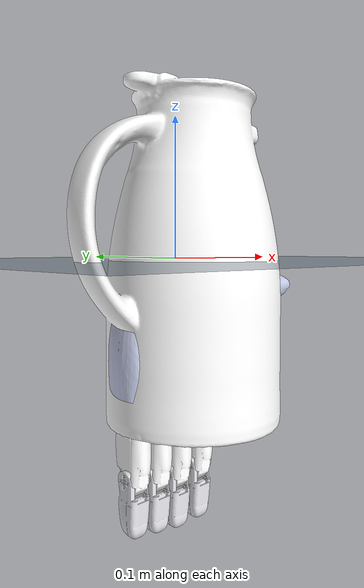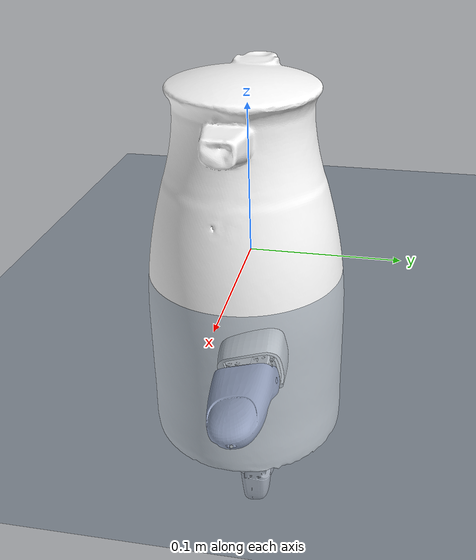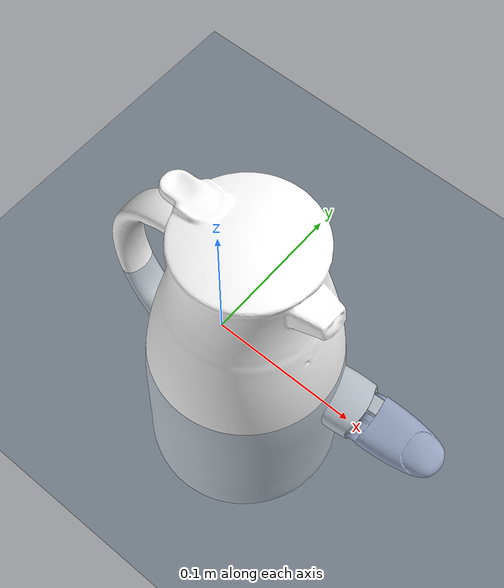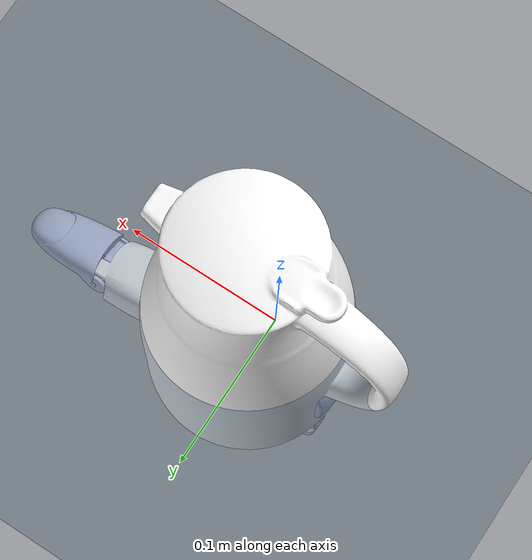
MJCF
<mujoco model="xhand_right">
  <compiler angle="radian" meshdir="../../../assets/"/>

  <default>
    <joint armature="1"/>
    <geom contype="0" conaffinity="0" condim="1" density="800"/>
    <site group="3" rgba="1 0 0 1"/>
    <general biastype="affine" gainprm="300" biasprm="0 -300 1"/>
  </default>

  <asset>
    <texture type="skybox" colorspace="auto" builtin="gradient" rgb1="1 1 1" rgb2="1 1 1" width="512" height="3072"/>
    <texture type="2d" colorspace="auto" name="right_groundplane" builtin="checker" mark="edge" rgb1="0.2 0.3 0.4" rgb2="0.1 0.2 0.3" markrgb="0.8 0.8 0.8" width="300" height="300"/>
    <texture type="cube" colorspace="auto" name="skybox" builtin="gradient" rgb1="0.3 0.5 0.7" rgb2="0 0 0" width="512" height="3072"/>
    <texture type="cube" colorspace="auto" name="groundplane" builtin="checker" mark="edge" rgb1="0.2 0.3 0.4" rgb2="0.1 0.2 0.3" markrgb="0.8 0.8 0.8" width="300" height="1800"/>
    <material name="right_groundplane" texture="right_groundplane" texuniform="true" texrepeat="5 5" reflectance="0.2"/>
    <material name="groundplane" texuniform="true" texrepeat="5 5" reflectance="0.2"/>
    <mesh name="right_hand_link" content_type="model/stl" file="robots/xhand/assets/right_hand_link.STL"/>
    <mesh name="right_hand_thumb_bend_link" content_type="model/stl" file="robots/xhand/assets/right_hand_thumb_bend_link.STL"/>
    <mesh name="right_hand_thumb_rota_link1" content_type="model/stl" file="robots/xhand/assets/right_hand_thumb_rota_link1.STL"/>
    <mesh name="right_hand_thumb_rota_link2" content_type="model/stl" file="robots/xhand/assets/right_hand_thumb_rota_link2.STL"/>
    <mesh name="right_hand_index_bend_link" content_type="model/stl" file="robots/xhand/assets/right_hand_index_bend_link.STL"/>
    <mesh name="right_hand_index_rota_link1" content_type="model/stl" file="robots/xhand/assets/right_hand_index_rota_link1.STL"/>
    <mesh name="right_hand_index_rota_link2" content_type="model/stl" file="robots/xhand/assets/right_hand_index_rota_link2.STL"/>
    <mesh name="right_hand_mid_link1" content_type="model/stl" file="robots/xhand/assets/right_hand_mid_link1.STL"/>
    <mesh name="right_hand_mid_link2" content_type="model/stl" file="robots/xhand/assets/right_hand_mid_link2.STL"/>
    <mesh name="right_hand_ring_link1" content_type="model/stl" file="robots/xhand/assets/right_hand_ring_link1.STL"/>
    <mesh name="right_hand_ring_link2" content_type="model/stl" file="robots/xhand/assets/right_hand_ring_link2.STL"/>
    <mesh name="right_hand_pinky_link1" content_type="model/stl" file="robots/xhand/assets/right_hand_pinky_link1.STL"/>
    <mesh name="right_hand_pinky_link2" content_type="model/stl" file="robots/xhand/assets/right_hand_pinky_link2.STL"/>
    <mesh name="right_visual" file="objects/029/visual.obj"/>
    <mesh name="right_0" file="objects/029/convex/0.obj"/>
    <mesh name="right_1" file="objects/029/convex/1.obj"/>
    <mesh name="right_2" file="objects/029/convex/2.obj"/>
    <mesh name="right_3" file="objects/029/convex/3.obj"/>
    <mesh name="right_4" file="objects/029/convex/4.obj"/>
    <mesh name="right_5" file="objects/029/convex/5.obj"/>
    <mesh name="right_6" file="objects/029/convex/6.obj"/>
    <mesh name="right_7" file="objects/029/convex/7.obj"/>
    <mesh name="right_8" file="objects/029/convex/8.obj"/>
    <mesh name="right_9" file="objects/029/convex/9.obj"/>
  </asset>

  <worldbody>
    <geom name="floor" size="0 0 0.05" pos="0 0 -0.001" type="plane" material="right_groundplane"/>
    <camera name="front" pos="0.031 0.941 0.844" quat="0.0150738 0.00673439 0.407848 0.912901" mode="trackcom"/>
    <body name="R_forearm_ty_link">
      <inertial pos="0 0 0" mass="0.1" diaginertia="0.01 0.01 0.01"/>
      <joint name="R_forearm_tx_link_joint" pos="0 0 0" axis="1 0 0" type="slide" range="-5 5"/>
      <camera name="right_track" pos="-0.868 -0.348 -0.175" quat="0.493349 0.487956 0.506363 0.51196"/>
      <body name="R_forearm_tz_link">
        <inertial pos="0 0 0" mass="0.1" diaginertia="0.01 0.01 0.01"/>
        <joint name="R_forearm_ty_link_joint" pos="0 0 0" axis="0 1 0" type="slide" range="-5 5"/>
        <body name="R_forearm_roll_link">
          <inertial pos="0 0 0" mass="0.1" diaginertia="0.01 0.01 0.01"/>
          <joint name="R_forearm_tz_link_joint" pos="0 0 0" axis="0 0 1" type="slide" range="-5 5"/>
          <body name="R_forearm_pitch_link">
            <inertial pos="0 0 0" mass="0.1" diaginertia="0.01 0.01 0.01"/>
            <joint name="R_forearm_roll_link_joint" pos="0 0 0" axis="0 0 1" range="-6.2 6.2"/>
            <body name="R_forearm_yaw_link">
              <inertial pos="0 0 0" mass="0.1" diaginertia="0.01 0.01 0.01"/>
              <joint name="R_forearm_pitch_link_joint" pos="0 0 0" axis="1 0 0" range="-6.2 6.2"/>
              <body name="right_hand_link">
                <inertial pos="-0.0071397 0.00342244 -0.0584807" quat="0.688453 0.098553 0.0886255 0.713068" mass="0.530025" diaginertia="0.00067782 0.000491189 0.000335821"/>
                <joint name="R_forearm_yaw_link_joint" pos="0 0 0" axis="0 -1 0" range="-6.2 6.2"/>
                <geom name="right_hand_link_visual" type="mesh" group="1" density="0" rgba="0.792157 0.819608 0.933333 1" mesh="right_hand_link"/>
                <geom name="collision_hand_right_palm_0" size="0.04 0.024 0.04" pos="0 0 -0.06" type="box" group="3" rgba="0 1 0 1"/>
                <site name="right_palm" pos="0 0 0" quat="0 0.707107 0.707107 0" size="0.01 0.02 0.03" type="box"/>
                <body name="right_hand_thumb_bend_link" pos="0.0228 0.0095 -0.0305">
                  <inertial pos="0.0145291 -0.000901303 -0.000127926" quat="0.0288921 0.68936 0.0166971 0.72365" mass="0.00985529" diaginertia="1.30647e-06 1.29142e-06 5.40953e-07"/>
                  <joint name="right_hand_thumb_bend_joint" pos="0 0 0" axis="0 0 1" range="0 1.83"/>
                  <geom name="right_thumb_bend_visual" type="mesh" group="1" density="0" rgba="0.890196 0.890196 0.913725 1" mesh="right_hand_thumb_bend_link"/>
                  <geom name="collision_hand_right_thumb_2" size="0.015 0.01" pos="0.01 0 0" quat="0.707107 0 -0.707107 0" type="capsule" group="3" rgba="0 1 0 1"/>
                  <body name="right_hand_thumb_rota_link1" pos="0.028599 0.0083177 0.00178" quat="0.99124 0.130499 0.00265603 0.0201745">
                    <inertial pos="0.0279237 -0.000127603 -0.000272577" quat="-0.0989965 0.703671 0.0850598 0.698435" mass="0.153265" diaginertia="5.62327e-05 4.89801e-05 2.23924e-05"/>
                    <joint name="right_hand_thumb_rota_joint1" pos="0 0 0" axis="0 1 0" range="-1.05 1.57"/>
                    <geom name="right_thumb_rota1_visual" type="mesh" group="1" density="0" rgba="1 1 1 1" mesh="right_hand_thumb_rota_link1"/>
                    <geom name="collision_hand_right_thumb_1" size="0.02 0.0275" pos="0.0275 0 0" quat="0.707107 0 -0.707107 0" type="capsule" group="3" rgba="0 1 0 1"/>
                    <body name="right_hand_thumb_rota_link2" pos="0.0553 0 0">
                      <inertial pos="0.0224697 -0.000691342 0.00302232" quat="-0.0604029 0.715612 0.0198067 0.695599" mass="0.0374004" diaginertia="9.5465e-06 8.27017e-06 3.92137e-06"/>
                      <joint name="right_hand_thumb_rota_joint2" pos="0 0 0" axis="0 1 0" range="-0.175 1.83"/>
                      <geom name="right_thumb_rota2_visual" type="mesh" group="1" density="0" rgba="0.792157 0.819608 0.933333 1" mesh="right_hand_thumb_rota_link2"/>
                      <geom name="collision_hand_right_thumb_0" size="0.015 0.02" pos="0.02 0 0" quat="0.707107 0 -0.707107 0" type="capsule" group="3" rgba="0 1 0 1"/>
                      <geom size="0.001" pos="0.0504025 0 0" group="1" density="0" rgba="0.698039 0.698039 0.698039 1"/>
                      <site name="right_thumb_tip" pos="0.04 0 -0.012"/>
                      <site name="track_hand_right_thumb_tip" pos="0.04 0 -0.012"/>
                      <site name="trace_hand_right_thumb_tip" pos="0.04 0 -0.012"/>
                    </body>
                  </body>
                </body>
                <body name="right_hand_index_bend_link" pos="0.0265 0.0065 -0.0899">
                  <inertial pos="8.08449e-05 0.000675884 0.00420851" quat="0.999802 -0.0189928 -0.00582288 0.000998418" mass="0.0677836" diaginertia="2.16592e-05 2.09943e-05 3.36803e-06"/>
                  <joint name="right_hand_index_bend_joint" pos="0 0 0" axis="0 1 0" range="-0.175 0.175"/>
                  <geom name="right_index_bend_visual" type="mesh" group="1" density="0" rgba="0.439216 0.439216 0.439216 1" mesh="right_hand_index_bend_link"/>
                  <body name="right_hand_index_rota_link1" pos="0 0 -0.0178">
                    <inertial pos="-0.00013977 -0.000800517 -0.0356039" quat="0.999865 0.00809183 -0.0131314 0.00566198" mass="0.0630216" diaginertia="2.05301e-05 1.92461e-05 4.135e-06"/>
                    <joint name="right_hand_index_joint1" pos="0 0 0" axis="1 0 0" range="0 1.92"/>
                    <geom name="right_index_rota1_visual" type="mesh" group="1" density="0" rgba="1 1 1 1" mesh="right_hand_index_rota_link1"/>
                    <geom name="collision_hand_right_index_1" size="0.012 0.0275" pos="0 0 -0.0275" type="capsule" group="3" rgba="0 1 0 1"/>
                    <body name="right_hand_index_rota_link2" pos="0 0 -0.0558">
                      <inertial pos="-0.000338569 1.93676e-05 -0.0231329" quat="0.935384 0.00588977 -0.0260883 0.35262" mass="0.0179923" diaginertia="3.02409e-06 3.01968e-06 9.82703e-07"/>
                      <joint name="right_hand_index_joint2" pos="0 0 0" axis="1 0 0" range="0 1.92"/>
                      <geom name="right_index_rota2_visual" type="mesh" group="1" density="0" rgba="0.866667 0.866667 0.890196 1" mesh="right_hand_index_rota_link2"/>
                      <geom name="collision_hand_right_index_0" size="0.01 0.015" pos="0 0 -0.015" type="capsule" group="3" rgba="0 1 0 1"/>
                      <geom size="0.001" pos="0 0 -0.0425" group="1" density="0" rgba="0.698039 0.698039 0.698039 1"/>
                      <site name="right_index_tip" pos="0 0.004 -0.027"/>
                      <site name="track_hand_right_index_tip" pos="0 0.004 -0.027"/>
                      <site name="trace_hand_right_index_tip" pos="0 0.004 -0.027"/>
                    </body>
                  </body>
                </body>
                <body name="right_hand_mid_link1" pos="0.004 0.0065 -0.1082">
                  <inertial pos="-0.000139769 -0.000800517 -0.0356039" quat="0.999865 0.00809181 -0.0131314 0.00566199" mass="0.0630216" diaginertia="2.05301e-05 1.92461e-05 4.135e-06"/>
                  <joint name="right_hand_mid_joint1" pos="0 0 0" axis="1 0 0" range="0 1.92"/>
                  <geom name="right_middle_link1_visual" type="mesh" group="1" density="0" rgba="1 1 1 1" mesh="right_hand_mid_link1"/>
                  <geom name="collision_hand_right_middle_1" size="0.012 0.0275" pos="0 0 -0.0275" type="capsule" group="3" rgba="0 1 0 1"/>
                  <body name="right_hand_mid_link2" pos="0 0 -0.0558">
                    <inertial pos="-0.000338569 1.93676e-05 -0.0231329" quat="0.935384 0.00588977 -0.0260883 0.35262" mass="0.0179923" diaginertia="3.02409e-06 3.01968e-06 9.82703e-07"/>
                    <joint name="right_hand_mid_joint2" pos="0 0 0" axis="1 0 0" range="0 1.94"/>
                    <geom name="right_middle_link2_visual" type="mesh" group="1" density="0" rgba="0.866667 0.866667 0.890196 1" mesh="right_hand_mid_link2"/>
                    <geom name="collision_hand_right_middle_0" size="0.01 0.015" pos="0 0 -0.015" type="capsule" group="3" rgba="0 1 0 1"/>
                    <geom size="0.001" pos="0 0 -0.042107" group="1" density="0" rgba="0.698039 0.698039 0.698039 1"/>
                    <site name="right_middle_tip" pos="0 0.004 -0.027"/>
                    <site name="track_hand_right_middle_tip" pos="0 0.004 -0.027"/>
                    <site name="trace_hand_right_middle_tip" pos="0 0.004 -0.027"/>
                  </body>
                </body>
                <body name="right_hand_ring_link1" pos="-0.016 0.0065 -0.1052">
                  <inertial pos="-0.00013977 -0.000800517 -0.0356039" quat="0.999865 0.00809183 -0.0131314 0.00566196" mass="0.0630216" diaginertia="2.05301e-05 1.92461e-05 4.135e-06"/>
                  <joint name="right_hand_ring_joint1" pos="0 0 0" axis="1 0 0" range="0 1.92"/>
                  <geom name="right_ring_link1_visual" type="mesh" group="1" density="0" rgba="1 1 1 1" mesh="right_hand_ring_link1"/>
                  <geom name="collision_hand_right_ring_1" size="0.012 0.0275" pos="0 0 -0.0275" type="capsule" group="3" rgba="0 1 0 1"/>
                  <body name="right_hand_ring_link2" pos="0 0 -0.0558">
                    <inertial pos="-0.000338573 1.93622e-05 -0.0231328" quat="0.935372 0.00588872 -0.0260882 0.352652" mass="0.0179923" diaginertia="3.02409e-06 3.01968e-06 9.82702e-07"/>
                    <joint name="right_hand_ring_joint2" pos="0 0 0" axis="1 0 0" range="0 1.92"/>
                    <geom name="right_ring_link2_visual" type="mesh" group="1" density="0" rgba="0.866667 0.866667 0.890196 1" mesh="right_hand_ring_link2"/>
                    <geom name="collision_hand_right_ring_0" size="0.01 0.015" pos="0 0 -0.015" type="capsule" group="3" rgba="0 1 0 1"/>
                    <geom size="0.001" pos="0 0 -0.0425" group="1" density="0" rgba="0.698039 0.698039 0.698039 1"/>
                    <site name="right_ring_tip" pos="0 0.004 -0.027"/>
                    <site name="track_hand_right_ring_tip" pos="0 0.004 -0.027"/>
                    <site name="trace_hand_right_ring_tip" pos="0 0.004 -0.027"/>
                  </body>
                </body>
                <body name="right_hand_pinky_link1" pos="-0.036 0.0065 -0.1022">
                  <inertial pos="-0.000139769 -0.000800517 -0.0356039" quat="0.999865 0.00809181 -0.0131314 0.00566204" mass="0.0630216" diaginertia="2.05301e-05 1.92461e-05 4.135e-06"/>
                  <joint name="right_hand_pinky_joint1" pos="0 0 0" axis="1 0 0" range="0 1.92"/>
                  <geom name="right_pinky_link1_visual" type="mesh" group="1" density="0" rgba="1 1 1 1" mesh="right_hand_pinky_link1"/>
                  <geom name="collision_hand_right_pinky_1" size="0.012 0.0275" pos="0 0 -0.0275" type="capsule" group="3" rgba="0 1 0 1"/>
                  <body name="right_hand_pinky_link2" pos="0 0 -0.0558">
                    <inertial pos="-0.000338569 1.93676e-05 -0.0231329" quat="0.935384 0.00588976 -0.0260883 0.352621" mass="0.0179923" diaginertia="3.02409e-06 3.01968e-06 9.82703e-07"/>
                    <joint name="right_hand_pinky_joint2" pos="0 0 0" axis="1 0 0" range="0 1.92"/>
                    <geom name="right_pinky_link2_visual" type="mesh" group="1" density="0" rgba="0.866667 0.866667 0.890196 1" mesh="right_hand_pinky_link2"/>
                    <geom name="collision_hand_right_pinky_0" size="0.01 0.015" pos="0 0 -0.015" type="capsule" group="3" rgba="0 1 0 1"/>
                    <geom size="0.001" pos="0 0 -0.0425" group="1" density="0" rgba="0.698039 0.698039 0.698039 1"/>
                    <site name="right_pinky_tip" pos="0 0.004 -0.027"/>
                    <site name="track_hand_right_pinky_tip" pos="0 0.004 -0.027"/>
                    <site name="trace_hand_right_pinky_tip" pos="0 0.004 -0.027"/>
                  </body>
                </body>
              </body>
            </body>
          </body>
        </body>
      </body>
    </body>
    <body name="right_object">
      <joint name="right_object_joint" type="free" armature="0.0001" frictionloss="0.0001"/>
      <geom name="right_object_0" type="mesh" group="3" density="1000" rgba="0 1 0 1" mesh="right_0"/>
      <geom name="right_object_1" type="mesh" group="3" density="1000" rgba="0 1 0 1" mesh="right_1"/>
      <geom name="right_object_2" type="mesh" group="3" density="1000" rgba="0 1 0 1" mesh="right_2"/>
      <geom name="right_object_3" type="mesh" group="3" density="1000" rgba="0 1 0 1" mesh="right_3"/>
      <geom name="right_object_4" type="mesh" group="3" density="1000" rgba="0 1 0 1" mesh="right_4"/>
      <geom name="right_object_5" type="mesh" group="3" density="1000" rgba="0 1 0 1" mesh="right_5"/>
      <geom name="right_object_6" type="mesh" group="3" density="1000" rgba="0 1 0 1" mesh="right_6"/>
      <geom name="right_object_7" type="mesh" group="3" density="1000" rgba="0 1 0 1" mesh="right_7"/>
      <geom name="right_object_8" type="mesh" group="3" density="1000" rgba="0 1 0 1" mesh="right_8"/>
      <geom name="right_object_9" type="mesh" group="3" density="1000" rgba="0 1 0 1" mesh="right_9"/>
      <geom name="right_object_visual" type="mesh" density="0" rgba="1 1 1 1" mesh="right_visual"/>
      <site name="right_object" pos="0 0 0" size="0.01 0.02 0.03" type="box"/>
      <site name="trace_right_object" pos="0 0 0" size="0.01" group="4" rgba="0 1 0 1"/>
      <site name="track_object_right_thumb_tip" pos="0 0 0" size="0.01" group="4" rgba="0 1 0 1"/>
      <site name="track_object_right_index_tip" pos="0 0 0" size="0.01" group="4" rgba="0 1 0 1"/>
      <site name="track_object_right_middle_tip" pos="0 0 0" size="0.01" group="4" rgba="0 1 0 1"/>
      <site name="track_object_right_ring_tip" pos="0 0 0" size="0.01" group="4" rgba="0 1 0 1"/>
      <site name="track_object_right_pinky_tip" pos="0 0 0" size="0.01" group="4" rgba="0 1 0 1"/>
    </body>
    <body name="ref_object_right_thumb_tip" mocap="true">
      <site name="ref_object_right_thumb_tip" pos="0 0 0" size="0.02" group="4" rgba="0 1 0 1"/>
    </body>
    <body name="ref_hand_right_thumb_tip" mocap="true">
      <site name="ref_hand_right_thumb_tip" pos="0 0 0" size="0.02" group="4" rgba="0 1 0 1"/>
    </body>
    <body name="ref_object_right_index_tip" mocap="true">
      <site name="ref_object_right_index_tip" pos="0 0 0" size="0.02" group="4" rgba="0 1 0 1"/>
    </body>
    <body name="ref_hand_right_index_tip" mocap="true">
      <site name="ref_hand_right_index_tip" pos="0 0 0" size="0.02" group="4" rgba="0 1 0 1"/>
    </body>
    <body name="ref_object_right_middle_tip" mocap="true">
      <site name="ref_object_right_middle_tip" pos="0 0 0" size="0.02" group="4" rgba="0 1 0 1"/>
    </body>
    <body name="ref_hand_right_middle_tip" mocap="true">
      <site name="ref_hand_right_middle_tip" pos="0 0 0" size="0.02" group="4" rgba="0 1 0 1"/>
    </body>
    <body name="ref_object_right_ring_tip" mocap="true">
      <site name="ref_object_right_ring_tip" pos="0 0 0" size="0.02" group="4" rgba="0 1 0 1"/>
    </body>
    <body name="ref_hand_right_ring_tip" mocap="true">
      <site name="ref_hand_right_ring_tip" pos="0 0 0" size="0.02" group="4" rgba="0 1 0 1"/>
    </body>
    <body name="ref_object_right_pinky_tip" mocap="true">
      <site name="ref_object_right_pinky_tip" pos="0 0 0" size="0.02" group="4" rgba="0 1 0 1"/>
    </body>
    <body name="ref_hand_right_pinky_tip" mocap="true">
      <site name="ref_hand_right_pinky_tip" pos="0 0 0" size="0.02" group="4" rgba="0 1 0 1"/>
    </body>
  </worldbody>

  <contact>
    <pair geom1="floor" geom2="right_object_0" name="floor_right_object_0" friction="1 1 0.1 0 0"/>
    <pair geom1="floor" geom2="right_object_1" name="floor_right_object_1" friction="1 1 0.1 0 0"/>
    <pair geom1="floor" geom2="right_object_2" name="floor_right_object_2" friction="1 1 0.1 0 0"/>
    <pair geom1="floor" geom2="right_object_3" name="floor_right_object_3" friction="1 1 0.1 0 0"/>
    <pair geom1="floor" geom2="right_object_4" name="floor_right_object_4" friction="1 1 0.1 0 0"/>
    <pair geom1="floor" geom2="right_object_5" name="floor_right_object_5" friction="1 1 0.1 0 0"/>
    <pair geom1="floor" geom2="right_object_6" name="floor_right_object_6" friction="1 1 0.1 0 0"/>
    <pair geom1="floor" geom2="right_object_7" name="floor_right_object_7" friction="1 1 0.1 0 0"/>
    <pair geom1="floor" geom2="right_object_8" name="floor_right_object_8" friction="1 1 0.1 0 0"/>
    <pair geom1="floor" geom2="right_object_9" name="floor_right_object_9" friction="1 1 0.1 0 0"/>
    <pair geom1="collision_hand_right_palm_0" geom2="collision_hand_right_thumb_0" name="collision_hand_right_palm_0_collision_hand_right_thumb_0" friction="1 1 0.1 0 0"/>
    <pair geom1="collision_hand_right_palm_0" geom2="collision_hand_right_index_0" name="collision_hand_right_palm_0_collision_hand_right_index_0" friction="1 1 0.1 0 0"/>
    <pair geom1="collision_hand_right_palm_0" geom2="collision_hand_right_middle_0" name="collision_hand_right_palm_0_collision_hand_right_middle_0" friction="1 1 0.1 0 0"/>
    <pair geom1="collision_hand_right_palm_0" geom2="collision_hand_right_ring_0" name="collision_hand_right_palm_0_collision_hand_right_ring_0" friction="1 1 0.1 0 0"/>
    <pair geom1="collision_hand_right_palm_0" geom2="collision_hand_right_pinky_0" name="collision_hand_right_palm_0_collision_hand_right_pinky_0" friction="1 1 0.1 0 0"/>
    <pair geom1="collision_hand_right_palm_0" geom2="right_object_0" name="collision_hand_right_palm_0_right_object_0" friction="1 1 0.1 0 0"/>
    <pair geom1="collision_hand_right_palm_0" geom2="right_object_1" name="collision_hand_right_palm_0_right_object_1" friction="1 1 0.1 0 0"/>
    <pair geom1="collision_hand_right_palm_0" geom2="right_object_2" name="collision_hand_right_palm_0_right_object_2" friction="1 1 0.1 0 0"/>
    <pair geom1="collision_hand_right_palm_0" geom2="right_object_3" name="collision_hand_right_palm_0_right_object_3" friction="1 1 0.1 0 0"/>
    <pair geom1="collision_hand_right_palm_0" geom2="right_object_4" name="collision_hand_right_palm_0_right_object_4" friction="1 1 0.1 0 0"/>
    <pair geom1="collision_hand_right_palm_0" geom2="right_object_5" name="collision_hand_right_palm_0_right_object_5" friction="1 1 0.1 0 0"/>
    <pair geom1="collision_hand_right_palm_0" geom2="right_object_6" name="collision_hand_right_palm_0_right_object_6" friction="1 1 0.1 0 0"/>
    <pair geom1="collision_hand_right_palm_0" geom2="right_object_7" name="collision_hand_right_palm_0_right_object_7" friction="1 1 0.1 0 0"/>
    <pair geom1="collision_hand_right_palm_0" geom2="right_object_8" name="collision_hand_right_palm_0_right_object_8" friction="1 1 0.1 0 0"/>
    <pair geom1="collision_hand_right_palm_0" geom2="right_object_9" name="collision_hand_right_palm_0_right_object_9" friction="1 1 0.1 0 0"/>
    <pair geom1="collision_hand_right_thumb_2" geom2="right_object_0" name="collision_hand_right_thumb_2_right_object_0" condim="4" friction="1 1 0.1 0 0"/>
    <pair geom1="collision_hand_right_thumb_2" geom2="right_object_1" name="collision_hand_right_thumb_2_right_object_1" condim="4" friction="1 1 0.1 0 0"/>
    <pair geom1="collision_hand_right_thumb_2" geom2="right_object_2" name="collision_hand_right_thumb_2_right_object_2" condim="4" friction="1 1 0.1 0 0"/>
    <pair geom1="collision_hand_right_thumb_2" geom2="right_object_3" name="collision_hand_right_thumb_2_right_object_3" condim="4" friction="1 1 0.1 0 0"/>
    <pair geom1="collision_hand_right_thumb_2" geom2="right_object_4" name="collision_hand_right_thumb_2_right_object_4" condim="4" friction="1 1 0.1 0 0"/>
    <pair geom1="collision_hand_right_thumb_2" geom2="right_object_5" name="collision_hand_right_thumb_2_right_object_5" condim="4" friction="1 1 0.1 0 0"/>
    <pair geom1="collision_hand_right_thumb_2" geom2="right_object_6" name="collision_hand_right_thumb_2_right_object_6" condim="4" friction="1 1 0.1 0 0"/>
    <pair geom1="collision_hand_right_thumb_2" geom2="right_object_7" name="collision_hand_right_thumb_2_right_object_7" condim="4" friction="1 1 0.1 0 0"/>
    <pair geom1="collision_hand_right_thumb_2" geom2="right_object_8" name="collision_hand_right_thumb_2_right_object_8" condim="4" friction="1 1 0.1 0 0"/>
    <pair geom1="collision_hand_right_thumb_2" geom2="right_object_9" name="collision_hand_right_thumb_2_right_object_9" condim="4" friction="1 1 0.1 0 0"/>
    <pair geom1="collision_hand_right_thumb_1" geom2="right_object_0" name="collision_hand_right_thumb_1_right_object_0" condim="4" friction="1 1 0.1 0 0"/>
    <pair geom1="collision_hand_right_thumb_1" geom2="right_object_1" name="collision_hand_right_thumb_1_right_object_1" condim="4" friction="1 1 0.1 0 0"/>
    <pair geom1="collision_hand_right_thumb_1" geom2="right_object_2" name="collision_hand_right_thumb_1_right_object_2" condim="4" friction="1 1 0.1 0 0"/>
    <pair geom1="collision_hand_right_thumb_1" geom2="right_object_3" name="collision_hand_right_thumb_1_right_object_3" condim="4" friction="1 1 0.1 0 0"/>
    <pair geom1="collision_hand_right_thumb_1" geom2="right_object_4" name="collision_hand_right_thumb_1_right_object_4" condim="4" friction="1 1 0.1 0 0"/>
    <pair geom1="collision_hand_right_thumb_1" geom2="right_object_5" name="collision_hand_right_thumb_1_right_object_5" condim="4" friction="1 1 0.1 0 0"/>
    <pair geom1="collision_hand_right_thumb_1" geom2="right_object_6" name="collision_hand_right_thumb_1_right_object_6" condim="4" friction="1 1 0.1 0 0"/>
    <pair geom1="collision_hand_right_thumb_1" geom2="right_object_7" name="collision_hand_right_thumb_1_right_object_7" condim="4" friction="1 1 0.1 0 0"/>
    <pair geom1="collision_hand_right_thumb_1" geom2="right_object_8" name="collision_hand_right_thumb_1_right_object_8" condim="4" friction="1 1 0.1 0 0"/>
    <pair geom1="collision_hand_right_thumb_1" geom2="right_object_9" name="collision_hand_right_thumb_1_right_object_9" condim="4" friction="1 1 0.1 0 0"/>
    <pair geom1="collision_hand_right_thumb_0" geom2="collision_hand_right_index_0" name="collision_hand_right_thumb_0_collision_hand_right_index_0" friction="1 1 0.1 0 0"/>
    <pair geom1="collision_hand_right_thumb_0" geom2="collision_hand_right_middle_0" name="collision_hand_right_thumb_0_collision_hand_right_middle_0" friction="1 1 0.1 0 0"/>
    <pair geom1="collision_hand_right_thumb_0" geom2="collision_hand_right_ring_0" name="collision_hand_right_thumb_0_collision_hand_right_ring_0" friction="1 1 0.1 0 0"/>
    <pair geom1="collision_hand_right_thumb_0" geom2="collision_hand_right_pinky_0" name="collision_hand_right_thumb_0_collision_hand_right_pinky_0" friction="1 1 0.1 0 0"/>
    <pair geom1="collision_hand_right_thumb_0" geom2="right_object_0" name="collision_hand_right_thumb_0_right_object_0" condim="4" friction="1 1 0.1 0 0"/>
    <pair geom1="collision_hand_right_thumb_0" geom2="right_object_1" name="collision_hand_right_thumb_0_right_object_1" condim="4" friction="1 1 0.1 0 0"/>
    <pair geom1="collision_hand_right_thumb_0" geom2="right_object_2" name="collision_hand_right_thumb_0_right_object_2" condim="4" friction="1 1 0.1 0 0"/>
    <pair geom1="collision_hand_right_thumb_0" geom2="right_object_3" name="collision_hand_right_thumb_0_right_object_3" condim="4" friction="1 1 0.1 0 0"/>
    <pair geom1="collision_hand_right_thumb_0" geom2="right_object_4" name="collision_hand_right_thumb_0_right_object_4" condim="4" friction="1 1 0.1 0 0"/>
    <pair geom1="collision_hand_right_thumb_0" geom2="right_object_5" name="collision_hand_right_thumb_0_right_object_5" condim="4" friction="1 1 0.1 0 0"/>
    <pair geom1="collision_hand_right_thumb_0" geom2="right_object_6" name="collision_hand_right_thumb_0_right_object_6" condim="4" friction="1 1 0.1 0 0"/>
    <pair geom1="collision_hand_right_thumb_0" geom2="right_object_7" name="collision_hand_right_thumb_0_right_object_7" condim="4" friction="1 1 0.1 0 0"/>
    <pair geom1="collision_hand_right_thumb_0" geom2="right_object_8" name="collision_hand_right_thumb_0_right_object_8" condim="4" friction="1 1 0.1 0 0"/>
    <pair geom1="collision_hand_right_thumb_0" geom2="right_object_9" name="collision_hand_right_thumb_0_right_object_9" condim="4" friction="1 1 0.1 0 0"/>
    <pair geom1="collision_hand_right_index_1" geom2="right_object_0" name="collision_hand_right_index_1_right_object_0" condim="4" friction="1 1 0.1 0 0"/>
    <pair geom1="collision_hand_right_index_1" geom2="right_object_1" name="collision_hand_right_index_1_right_object_1" condim="4" friction="1 1 0.1 0 0"/>
    <pair geom1="collision_hand_right_index_1" geom2="right_object_2" name="collision_hand_right_index_1_right_object_2" condim="4" friction="1 1 0.1 0 0"/>
    <pair geom1="collision_hand_right_index_1" geom2="right_object_3" name="collision_hand_right_index_1_right_object_3" condim="4" friction="1 1 0.1 0 0"/>
    <pair geom1="collision_hand_right_index_1" geom2="right_object_4" name="collision_hand_right_index_1_right_object_4" condim="4" friction="1 1 0.1 0 0"/>
    <pair geom1="collision_hand_right_index_1" geom2="right_object_5" name="collision_hand_right_index_1_right_object_5" condim="4" friction="1 1 0.1 0 0"/>
    <pair geom1="collision_hand_right_index_1" geom2="right_object_6" name="collision_hand_right_index_1_right_object_6" condim="4" friction="1 1 0.1 0 0"/>
    <pair geom1="collision_hand_right_index_1" geom2="right_object_7" name="collision_hand_right_index_1_right_object_7" condim="4" friction="1 1 0.1 0 0"/>
    <pair geom1="collision_hand_right_index_1" geom2="right_object_8" name="collision_hand_right_index_1_right_object_8" condim="4" friction="1 1 0.1 0 0"/>
    <pair geom1="collision_hand_right_index_1" geom2="right_object_9" name="collision_hand_right_index_1_right_object_9" condim="4" friction="1 1 0.1 0 0"/>
    <pair geom1="collision_hand_right_index_0" geom2="collision_hand_right_middle_0" name="collision_hand_right_index_0_collision_hand_right_middle_0" friction="1 1 0.1 0 0"/>
    <pair geom1="collision_hand_right_index_0" geom2="collision_hand_right_ring_0" name="collision_hand_right_index_0_collision_hand_right_ring_0" friction="1 1 0.1 0 0"/>
    <pair geom1="collision_hand_right_index_0" geom2="collision_hand_right_pinky_0" name="collision_hand_right_index_0_collision_hand_right_pinky_0" friction="1 1 0.1 0 0"/>
    <pair geom1="collision_hand_right_index_0" geom2="right_object_0" name="collision_hand_right_index_0_right_object_0" condim="4" friction="1 1 0.1 0 0"/>
    <pair geom1="collision_hand_right_index_0" geom2="right_object_1" name="collision_hand_right_index_0_right_object_1" condim="4" friction="1 1 0.1 0 0"/>
    <pair geom1="collision_hand_right_index_0" geom2="right_object_2" name="collision_hand_right_index_0_right_object_2" condim="4" friction="1 1 0.1 0 0"/>
    <pair geom1="collision_hand_right_index_0" geom2="right_object_3" name="collision_hand_right_index_0_right_object_3" condim="4" friction="1 1 0.1 0 0"/>
    <pair geom1="collision_hand_right_index_0" geom2="right_object_4" name="collision_hand_right_index_0_right_object_4" condim="4" friction="1 1 0.1 0 0"/>
    <pair geom1="collision_hand_right_index_0" geom2="right_object_5" name="collision_hand_right_index_0_right_object_5" condim="4" friction="1 1 0.1 0 0"/>
    <pair geom1="collision_hand_right_index_0" geom2="right_object_6" name="collision_hand_right_index_0_right_object_6" condim="4" friction="1 1 0.1 0 0"/>
    <pair geom1="collision_hand_right_index_0" geom2="right_object_7" name="collision_hand_right_index_0_right_object_7" condim="4" friction="1 1 0.1 0 0"/>
    <pair geom1="collision_hand_right_index_0" geom2="right_object_8" name="collision_hand_right_index_0_right_object_8" condim="4" friction="1 1 0.1 0 0"/>
    <pair geom1="collision_hand_right_index_0" geom2="right_object_9" name="collision_hand_right_index_0_right_object_9" condim="4" friction="1 1 0.1 0 0"/>
    <pair geom1="collision_hand_right_middle_1" geom2="right_object_0" name="collision_hand_right_middle_1_right_object_0" friction="1 1 0.1 0 0"/>
    <pair geom1="collision_hand_right_middle_1" geom2="right_object_1" name="collision_hand_right_middle_1_right_object_1" friction="1 1 0.1 0 0"/>
    <pair geom1="collision_hand_right_middle_1" geom2="right_object_2" name="collision_hand_right_middle_1_right_object_2" friction="1 1 0.1 0 0"/>
    <pair geom1="collision_hand_right_middle_1" geom2="right_object_3" name="collision_hand_right_middle_1_right_object_3" friction="1 1 0.1 0 0"/>
    <pair geom1="collision_hand_right_middle_1" geom2="right_object_4" name="collision_hand_right_middle_1_right_object_4" friction="1 1 0.1 0 0"/>
    <pair geom1="collision_hand_right_middle_1" geom2="right_object_5" name="collision_hand_right_middle_1_right_object_5" friction="1 1 0.1 0 0"/>
    <pair geom1="collision_hand_right_middle_1" geom2="right_object_6" name="collision_hand_right_middle_1_right_object_6" friction="1 1 0.1 0 0"/>
    <pair geom1="collision_hand_right_middle_1" geom2="right_object_7" name="collision_hand_right_middle_1_right_object_7" friction="1 1 0.1 0 0"/>
    <pair geom1="collision_hand_right_middle_1" geom2="right_object_8" name="collision_hand_right_middle_1_right_object_8" friction="1 1 0.1 0 0"/>
    <pair geom1="collision_hand_right_middle_1" geom2="right_object_9" name="collision_hand_right_middle_1_right_object_9" friction="1 1 0.1 0 0"/>
    <pair geom1="collision_hand_right_middle_0" geom2="collision_hand_right_ring_0" name="collision_hand_right_middle_0_collision_hand_right_ring_0" friction="1 1 0.1 0 0"/>
    <pair geom1="collision_hand_right_middle_0" geom2="collision_hand_right_pinky_0" name="collision_hand_right_middle_0_collision_hand_right_pinky_0" friction="1 1 0.1 0 0"/>
    <pair geom1="collision_hand_right_middle_0" geom2="right_object_0" name="collision_hand_right_middle_0_right_object_0" friction="1 1 0.1 0 0"/>
    <pair geom1="collision_hand_right_middle_0" geom2="right_object_1" name="collision_hand_right_middle_0_right_object_1" friction="1 1 0.1 0 0"/>
    <pair geom1="collision_hand_right_middle_0" geom2="right_object_2" name="collision_hand_right_middle_0_right_object_2" friction="1 1 0.1 0 0"/>
    <pair geom1="collision_hand_right_middle_0" geom2="right_object_3" name="collision_hand_right_middle_0_right_object_3" friction="1 1 0.1 0 0"/>
    <pair geom1="collision_hand_right_middle_0" geom2="right_object_4" name="collision_hand_right_middle_0_right_object_4" friction="1 1 0.1 0 0"/>
    <pair geom1="collision_hand_right_middle_0" geom2="right_object_5" name="collision_hand_right_middle_0_right_object_5" friction="1 1 0.1 0 0"/>
    <pair geom1="collision_hand_right_middle_0" geom2="right_object_6" name="collision_hand_right_middle_0_right_object_6" friction="1 1 0.1 0 0"/>
    <pair geom1="collision_hand_right_middle_0" geom2="right_object_7" name="collision_hand_right_middle_0_right_object_7" friction="1 1 0.1 0 0"/>
    <pair geom1="collision_hand_right_middle_0" geom2="right_object_8" name="collision_hand_right_middle_0_right_object_8" friction="1 1 0.1 0 0"/>
    <pair geom1="collision_hand_right_middle_0" geom2="right_object_9" name="collision_hand_right_middle_0_right_object_9" friction="1 1 0.1 0 0"/>
    <pair geom1="collision_hand_right_ring_1" geom2="right_object_0" name="collision_hand_right_ring_1_right_object_0" friction="1 1 0.1 0 0"/>
    <pair geom1="collision_hand_right_ring_1" geom2="right_object_1" name="collision_hand_right_ring_1_right_object_1" friction="1 1 0.1 0 0"/>
    <pair geom1="collision_hand_right_ring_1" geom2="right_object_2" name="collision_hand_right_ring_1_right_object_2" friction="1 1 0.1 0 0"/>
    <pair geom1="collision_hand_right_ring_1" geom2="right_object_3" name="collision_hand_right_ring_1_right_object_3" friction="1 1 0.1 0 0"/>
    <pair geom1="collision_hand_right_ring_1" geom2="right_object_4" name="collision_hand_right_ring_1_right_object_4" friction="1 1 0.1 0 0"/>
    <pair geom1="collision_hand_right_ring_1" geom2="right_object_5" name="collision_hand_right_ring_1_right_object_5" friction="1 1 0.1 0 0"/>
    <pair geom1="collision_hand_right_ring_1" geom2="right_object_6" name="collision_hand_right_ring_1_right_object_6" friction="1 1 0.1 0 0"/>
    <pair geom1="collision_hand_right_ring_1" geom2="right_object_7" name="collision_hand_right_ring_1_right_object_7" friction="1 1 0.1 0 0"/>
    <pair geom1="collision_hand_right_ring_1" geom2="right_object_8" name="collision_hand_right_ring_1_right_object_8" friction="1 1 0.1 0 0"/>
    <pair geom1="collision_hand_right_ring_1" geom2="right_object_9" name="collision_hand_right_ring_1_right_object_9" friction="1 1 0.1 0 0"/>
    <pair geom1="collision_hand_right_ring_0" geom2="collision_hand_right_pinky_0" name="collision_hand_right_ring_0_collision_hand_right_pinky_0" friction="1 1 0.1 0 0"/>
    <pair geom1="collision_hand_right_ring_0" geom2="right_object_0" name="collision_hand_right_ring_0_right_object_0" friction="1 1 0.1 0 0"/>
    <pair geom1="collision_hand_right_ring_0" geom2="right_object_1" name="collision_hand_right_ring_0_right_object_1" friction="1 1 0.1 0 0"/>
    <pair geom1="collision_hand_right_ring_0" geom2="right_object_2" name="collision_hand_right_ring_0_right_object_2" friction="1 1 0.1 0 0"/>
    <pair geom1="collision_hand_right_ring_0" geom2="right_object_3" name="collision_hand_right_ring_0_right_object_3" friction="1 1 0.1 0 0"/>
    <pair geom1="collision_hand_right_ring_0" geom2="right_object_4" name="collision_hand_right_ring_0_right_object_4" friction="1 1 0.1 0 0"/>
    <pair geom1="collision_hand_right_ring_0" geom2="right_object_5" name="collision_hand_right_ring_0_right_object_5" friction="1 1 0.1 0 0"/>
    <pair geom1="collision_hand_right_ring_0" geom2="right_object_6" name="collision_hand_right_ring_0_right_object_6" friction="1 1 0.1 0 0"/>
    <pair geom1="collision_hand_right_ring_0" geom2="right_object_7" name="collision_hand_right_ring_0_right_object_7" friction="1 1 0.1 0 0"/>
    <pair geom1="collision_hand_right_ring_0" geom2="right_object_8" name="collision_hand_right_ring_0_right_object_8" friction="1 1 0.1 0 0"/>
    <pair geom1="collision_hand_right_ring_0" geom2="right_object_9" name="collision_hand_right_ring_0_right_object_9" friction="1 1 0.1 0 0"/>
    <pair geom1="collision_hand_right_pinky_1" geom2="right_object_0" name="collision_hand_right_pinky_1_right_object_0" friction="1 1 0.1 0 0"/>
    <pair geom1="collision_hand_right_pinky_1" geom2="right_object_1" name="collision_hand_right_pinky_1_right_object_1" friction="1 1 0.1 0 0"/>
    <pair geom1="collision_hand_right_pinky_1" geom2="right_object_2" name="collision_hand_right_pinky_1_right_object_2" friction="1 1 0.1 0 0"/>
    <pair geom1="collision_hand_right_pinky_1" geom2="right_object_3" name="collision_hand_right_pinky_1_right_object_3" friction="1 1 0.1 0 0"/>
    <pair geom1="collision_hand_right_pinky_1" geom2="right_object_4" name="collision_hand_right_pinky_1_right_object_4" friction="1 1 0.1 0 0"/>
    <pair geom1="collision_hand_right_pinky_1" geom2="right_object_5" name="collision_hand_right_pinky_1_right_object_5" friction="1 1 0.1 0 0"/>
    <pair geom1="collision_hand_right_pinky_1" geom2="right_object_6" name="collision_hand_right_pinky_1_right_object_6" friction="1 1 0.1 0 0"/>
    <pair geom1="collision_hand_right_pinky_1" geom2="right_object_7" name="collision_hand_right_pinky_1_right_object_7" friction="1 1 0.1 0 0"/>
    <pair geom1="collision_hand_right_pinky_1" geom2="right_object_8" name="collision_hand_right_pinky_1_right_object_8" friction="1 1 0.1 0 0"/>
    <pair geom1="collision_hand_right_pinky_1" geom2="right_object_9" name="collision_hand_right_pinky_1_right_object_9" friction="1 1 0.1 0 0"/>
    <pair geom1="collision_hand_right_pinky_0" geom2="right_object_0" name="collision_hand_right_pinky_0_right_object_0" friction="1 1 0.1 0 0"/>
    <pair geom1="collision_hand_right_pinky_0" geom2="right_object_1" name="collision_hand_right_pinky_0_right_object_1" friction="1 1 0.1 0 0"/>
    <pair geom1="collision_hand_right_pinky_0" geom2="right_object_2" name="collision_hand_right_pinky_0_right_object_2" friction="1 1 0.1 0 0"/>
    <pair geom1="collision_hand_right_pinky_0" geom2="right_object_3" name="collision_hand_right_pinky_0_right_object_3" friction="1 1 0.1 0 0"/>
    <pair geom1="collision_hand_right_pinky_0" geom2="right_object_4" name="collision_hand_right_pinky_0_right_object_4" friction="1 1 0.1 0 0"/>
    <pair geom1="collision_hand_right_pinky_0" geom2="right_object_5" name="collision_hand_right_pinky_0_right_object_5" friction="1 1 0.1 0 0"/>
    <pair geom1="collision_hand_right_pinky_0" geom2="right_object_6" name="collision_hand_right_pinky_0_right_object_6" friction="1 1 0.1 0 0"/>
    <pair geom1="collision_hand_right_pinky_0" geom2="right_object_7" name="collision_hand_right_pinky_0_right_object_7" friction="1 1 0.1 0 0"/>
    <pair geom1="collision_hand_right_pinky_0" geom2="right_object_8" name="collision_hand_right_pinky_0_right_object_8" friction="1 1 0.1 0 0"/>
    <pair geom1="collision_hand_right_pinky_0" geom2="right_object_9" name="collision_hand_right_pinky_0_right_object_9" friction="1 1 0.1 0 0"/>
  </contact>

  <equality>
    <connect name="track_hand_right_thumb_tip_equality_constraint" site1="track_hand_right_thumb_tip" site2="ref_hand_right_thumb_tip" solimp="0 1 100"/>
    <connect name="track_hand_right_index_tip_equality_constraint" site1="track_hand_right_index_tip" site2="ref_hand_right_index_tip" solimp="0 1 100"/>
    <connect name="track_hand_right_middle_tip_equality_constraint" site1="track_hand_right_middle_tip" site2="ref_hand_right_middle_tip" solimp="0 1 100"/>
    <connect name="track_hand_right_ring_tip_equality_constraint" site1="track_hand_right_ring_tip" site2="ref_hand_right_ring_tip" solimp="0 1 100"/>
    <connect name="track_hand_right_pinky_tip_equality_constraint" site1="track_hand_right_pinky_tip" site2="ref_hand_right_pinky_tip" solimp="0 1 100"/>
    <connect name="track_object_right_thumb_tip_equality_constraint" site1="track_object_right_thumb_tip" site2="ref_object_right_thumb_tip" solimp="0 1 100"/>
    <connect name="track_object_right_index_tip_equality_constraint" site1="track_object_right_index_tip" site2="ref_object_right_index_tip" solimp="0 1 100"/>
    <connect name="track_object_right_middle_tip_equality_constraint" site1="track_object_right_middle_tip" site2="ref_object_right_middle_tip" solimp="0 1 100"/>
    <connect name="track_object_right_ring_tip_equality_constraint" site1="track_object_right_ring_tip" site2="ref_object_right_ring_tip" solimp="0 1 100"/>
    <connect name="track_object_right_pinky_tip_equality_constraint" site1="track_object_right_pinky_tip" site2="ref_object_right_pinky_tip" solimp="0 1 100"/>
  </equality>

  <actuator>
    <general name="R_forearm_tx_position" joint="R_forearm_tx_link_joint" ctrlrange="-5 5" gainprm="1000" biasprm="0 -1000"/>
    <general name="R_forearm_ty_position" joint="R_forearm_ty_link_joint" ctrlrange="-5 5" gainprm="1000" biasprm="0 -1000"/>
    <general name="R_forearm_tz_position" joint="R_forearm_tz_link_joint" ctrlrange="-5 5" gainprm="1000" biasprm="0 -1000"/>
    <general name="R_forearm_roll_position" joint="R_forearm_roll_link_joint" ctrlrange="-6.2 6.2" gainprm="1000" biasprm="0 -1000"/>
    <general name="R_forearm_pitch_position" joint="R_forearm_pitch_link_joint" ctrlrange="-6.2 6.2" gainprm="1000" biasprm="0 -1000"/>
    <general name="R_forearm_yaw_position" joint="R_forearm_yaw_link_joint" ctrlrange="-6.2 6.2" gainprm="1000" biasprm="0 -1000"/>
    <general name="right_thumb_bend_position" joint="right_hand_thumb_bend_joint" ctrlrange="0 1.83"/>
    <general name="right_thumb_rota1_position" joint="right_hand_thumb_rota_joint1" ctrlrange="-1.05 1.57"/>
    <general name="right_thumb_rota2_position" joint="right_hand_thumb_rota_joint2" ctrlrange="-0.175 1.83"/>
    <general name="right_index_bend_position" joint="right_hand_index_bend_joint" ctrlrange="-0.175 0.175"/>
    <general name="right_index_joint1_position" joint="right_hand_index_joint1" ctrlrange="0 1.92"/>
    <general name="right_index_joint2_position" joint="right_hand_index_joint2" ctrlrange="0 1.92"/>
    <general name="right_middle_joint1_position" joint="right_hand_mid_joint1" ctrlrange="0 1.92"/>
    <general name="right_middle_joint2_position" joint="right_hand_mid_joint2" ctrlrange="0 1.94"/>
    <general name="right_ring_joint1_position" joint="right_hand_ring_joint1" ctrlrange="0 1.92"/>
    <general name="right_ring_joint2_position" joint="right_hand_ring_joint2" ctrlrange="0 1.92"/>
    <general name="right_pinky_joint1_position" joint="right_hand_pinky_joint1" ctrlrange="0 1.92"/>
    <general name="right_pinky_joint2_position" joint="right_hand_pinky_joint2" ctrlrange="0 1.92"/>
  </actuator>
</mujoco>
